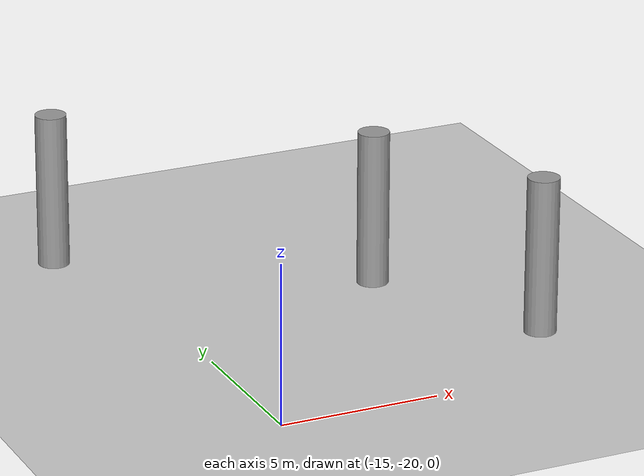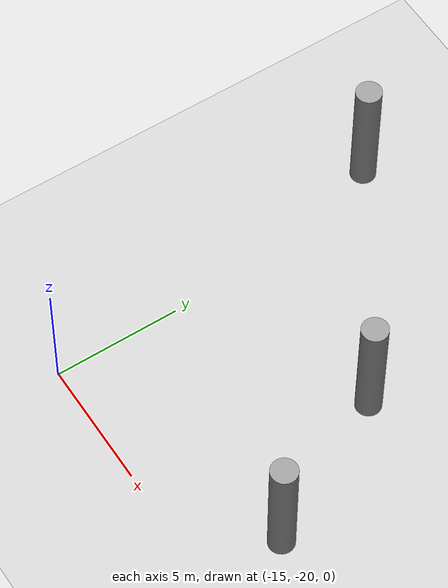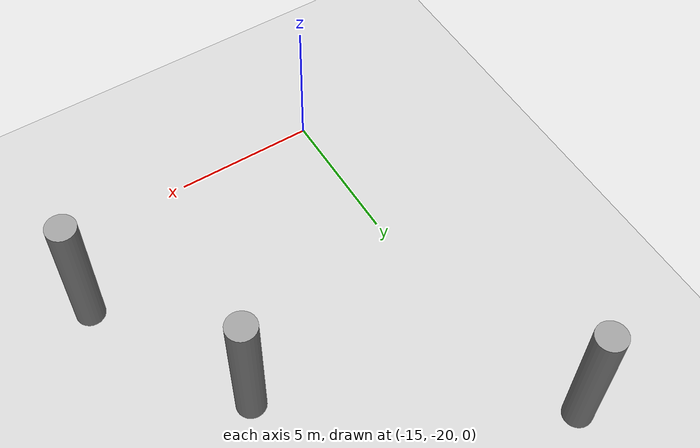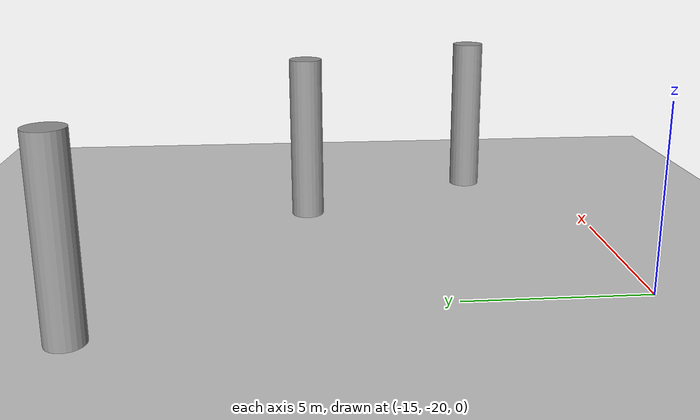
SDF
<sdf version="1.7">
 <world name="default">
  <model name="ground_plane">
   <static>1</static>
   <link name="link">
    <collision name="collision">
     <geometry><plane><normal>0 0 1</normal><size>100 100</size></plane></geometry>
     <surface><friction><ode><mu>100</mu><mu2>50</mu2></ode></friction></surface>
    </collision>
    <visual name="visual">
     <cast_shadows>0</cast_shadows>
     <geometry><plane><normal>0 0 1</normal><size>100 100</size></plane></geometry>
     <material>
      <script><uri>file://media/materials/scripts/gazebo.material</uri><name>Gazebo/Grey</name></script>
     </material>
    </visual>
   </link>
  </model>
  <model name="cylinder5_clone_15">
   <link name="link">
    <inertial>
     <mass>1</mass>
     <inertia><ixx>0.145833</ixx><ixy>0</ixy><ixz>0</ixz><iyy>0.145833</iyy><iyz>0</iyz><izz>0.125</izz></inertia>
    </inertial>
    <visual name="visual">
     <geometry><cylinder><radius>0.5</radius><length>5</length></cylinder></geometry>
     <material>
      <script><name>Gazebo/Grey</name><uri>file://media/materials/scripts/gazebo.material</uri></script>
      <shader type="pixel"><normal_map>__default__</normal_map></shader>
      <ambient>0.3 0.3 0.3 1</ambient>
      <diffuse>0.7 0.7 0.7 1</diffuse>
      <specular>0.01 0.01 0.01 1</specular>
      <emissive>0 0 0 1</emissive>
     </material>
    </visual>
    <collision name="collision">
     <geometry><cylinder><radius>0.5</radius><length>5</length></cylinder></geometry>
     <surface>
      <friction>
       <ode><mu>1</mu><mu2>1</mu2><fdir1>0 0 0</fdir1><slip1>0</slip1><slip2>0</slip2></ode>
       <torsional>
        <coefficient>1</coefficient>
        <patch_radius>0</patch_radius>
        <surface_radius>0</surface_radius>
        <use_patch_radius>1</use_patch_radius>
        <ode><slip>0</slip></ode>
       </torsional>
      </friction>
      <bounce><restitution_coefficient>0</restitution_coefficient><threshold>1e+06</threshold></bounce>
      <contact>
       <collide_without_contact>0</collide_without_contact>
       <collide_without_contact_bitmask>1</collide_without_contact_bitmask>
       <collide_bitmask>1</collide_bitmask>
       <ode>
        <soft_cfm>0</soft_cfm>
        <soft_erp>0.2</soft_erp>
        <kp>1e+13</kp>
        <kd>1</kd>
        <max_vel>0.01</max_vel>
        <min_depth>0</min_depth>
       </ode>
       <bullet>
        <split_impulse>1</split_impulse>
        <split_impulse_penetration_threshold>-0.01</split_impulse_penetration_threshold>
        <soft_cfm>0</soft_cfm>
        <soft_erp>0.2</soft_erp>
        <kp>1e+13</kp>
        <kd>1</kd>
       </bullet>
      </contact>
     </surface>
    </collision>
   </link>
   <static>0</static>
   <pose>-5 -17 2.5 0 -0 0</pose>
  </model>
  <model name="cylinder5_clone_16">
   <link name="link">
    <inertial>
     <mass>1</mass>
     <inertia><ixx>0.145833</ixx><ixy>0</ixy><ixz>0</ixz><iyy>0.145833</iyy><iyz>0</iyz><izz>0.125</izz></inertia>
    </inertial>
    <visual name="visual">
     <geometry><cylinder><radius>0.5</radius><length>5</length></cylinder></geometry>
     <material>
      <script><name>Gazebo/Grey</name><uri>file://media/materials/scripts/gazebo.material</uri></script>
      <shader type="pixel"><normal_map>__default__</normal_map></shader>
      <ambient>0.3 0.3 0.3 1</ambient>
      <diffuse>0.7 0.7 0.7 1</diffuse>
      <specular>0.01 0.01 0.01 1</specular>
      <emissive>0 0 0 1</emissive>
     </material>
    </visual>
    <collision name="collision">
     <geometry><cylinder><radius>0.5</radius><length>5</length></cylinder></geometry>
     <surface>
      <friction>
       <ode><mu>1</mu><mu2>1</mu2><fdir1>0 0 0</fdir1><slip1>0</slip1><slip2>0</slip2></ode>
       <torsional>
        <coefficient>1</coefficient>
        <patch_radius>0</patch_radius>
        <surface_radius>0</surface_radius>
        <use_patch_radius>1</use_patch_radius>
        <ode><slip>0</slip></ode>
       </torsional>
      </friction>
      <bounce><restitution_coefficient>0</restitution_coefficient><threshold>1e+06</threshold></bounce>
      <contact>
       <collide_without_contact>0</collide_without_contact>
       <collide_without_contact_bitmask>1</collide_without_contact_bitmask>
       <collide_bitmask>1</collide_bitmask>
       <ode>
        <soft_cfm>0</soft_cfm>
        <soft_erp>0.2</soft_erp>
        <kp>1e+13</kp>
        <kd>1</kd>
        <max_vel>0.01</max_vel>
        <min_depth>0</min_depth>
       </ode>
       <bullet>
        <split_impulse>1</split_impulse>
        <split_impulse_penetration_threshold>-0.01</split_impulse_penetration_threshold>
        <soft_cfm>0</soft_cfm>
        <soft_erp>0.2</soft_erp>
        <kp>1e+13</kp>
        <kd>1</kd>
       </bullet>
      </contact>
     </surface>
    </collision>
   </link>
   <static>0</static>
   <pose>-16.4138 -5.73397 2.5 0 -0 0</pose>
  </model>
  <model name="cylinder5_clone_17">
   <link name="link">
    <inertial>
     <mass>1</mass>
     <inertia><ixx>0.145833</ixx><ixy>0</ixy><ixz>0</ixz><iyy>0.145833</iyy><iyz>0</iyz><izz>0.125</izz></inertia>
    </inertial>
    <visual name="visual">
     <geometry><cylinder><radius>0.5</radius><length>5</length></cylinder></geometry>
     <material>
      <script><name>Gazebo/Grey</name><uri>file://media/materials/scripts/gazebo.material</uri></script>
      <shader type="pixel"><normal_map>__default__</normal_map></shader>
      <ambient>0.3 0.3 0.3 1</ambient>
      <diffuse>0.7 0.7 0.7 1</diffuse>
      <specular>0.01 0.01 0.01 1</specular>
      <emissive>0 0 0 1</emissive>
     </material>
    </visual>
    <collision name="collision">
     <geometry><cylinder><radius>0.5</radius><length>5</length></cylinder></geometry>
     <surface>
      <friction>
       <ode><mu>1</mu><mu2>1</mu2><fdir1>0 0 0</fdir1><slip1>0</slip1><slip2>0</slip2></ode>
       <torsional>
        <coefficient>1</coefficient>
        <patch_radius>0</patch_radius>
        <surface_radius>0</surface_radius>
        <use_patch_radius>1</use_patch_radius>
        <ode><slip>0</slip></ode>
       </torsional>
      </friction>
      <bounce><restitution_coefficient>0</restitution_coefficient><threshold>1e+06</threshold></bounce>
      <contact>
       <collide_without_contact>0</collide_without_contact>
       <collide_without_contact_bitmask>1</collide_without_contact_bitmask>
       <collide_bitmask>1</collide_bitmask>
       <ode>
        <soft_cfm>0</soft_cfm>
        <soft_erp>0.2</soft_erp>
        <kp>1e+13</kp>
        <kd>1</kd>
        <max_vel>0.01</max_vel>
        <min_depth>0</min_depth>
       </ode>
       <bullet>
        <split_impulse>1</split_impulse>
        <split_impulse_penetration_threshold>-0.01</split_impulse_penetration_threshold>
        <soft_cfm>0</soft_cfm>
        <soft_erp>0.2</soft_erp>
        <kp>1e+13</kp>
        <kd>1</kd>
       </bullet>
      </contact>
     </surface>
    </collision>
   </link>
   <static>0</static>
   <pose>-7.9136 -11.3438 2.5 0 -0 0</pose>
  </model>
 </world>
</sdf>
